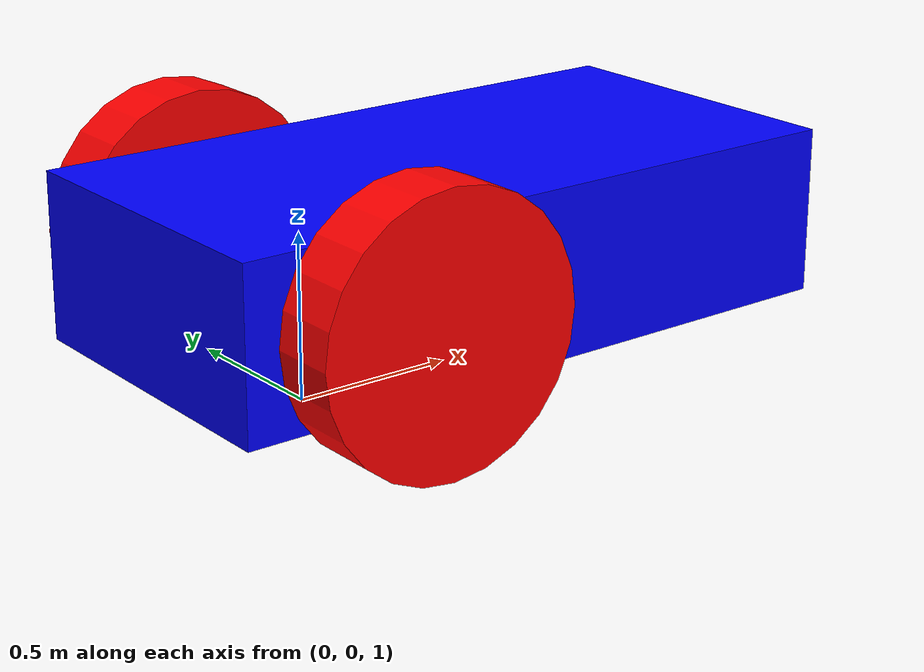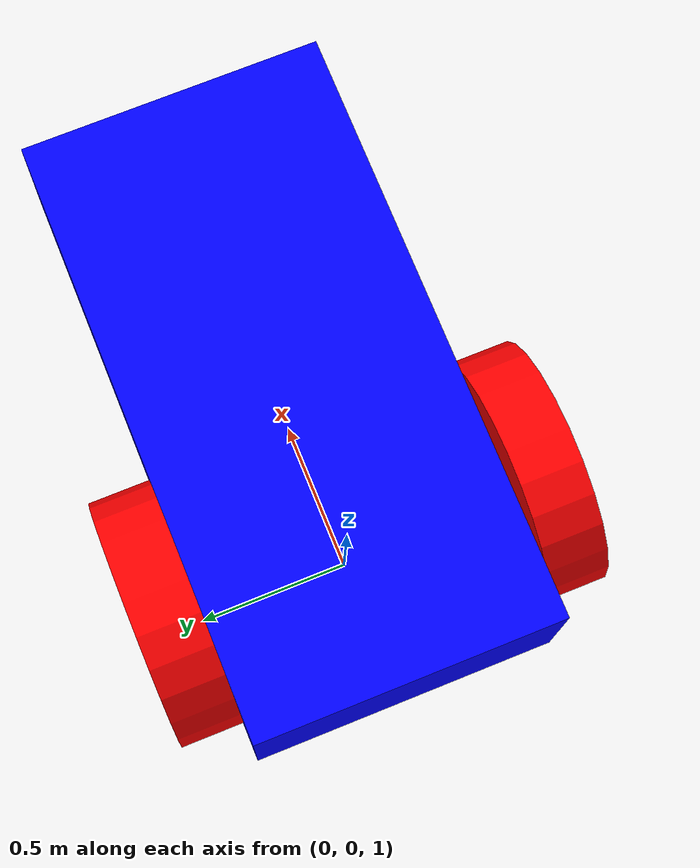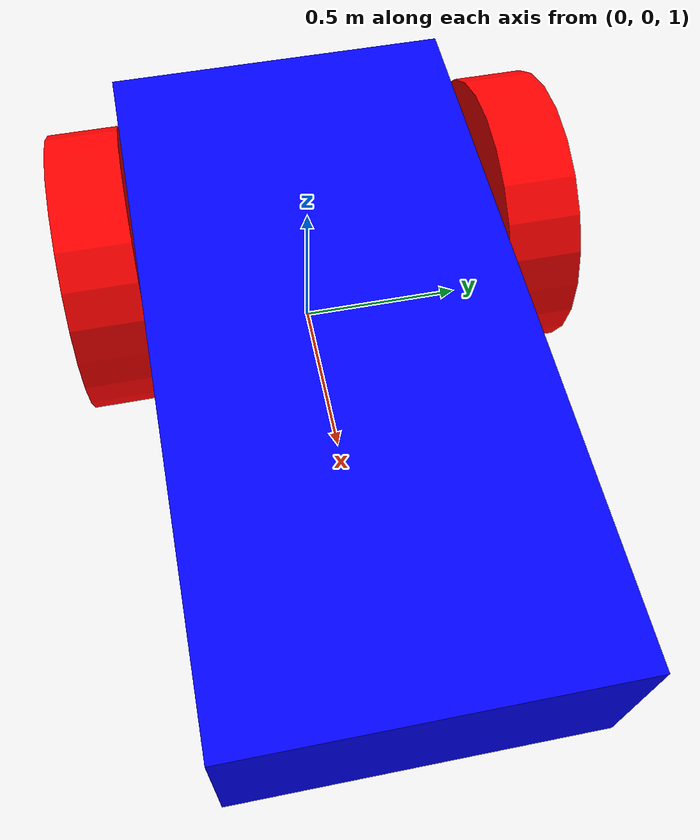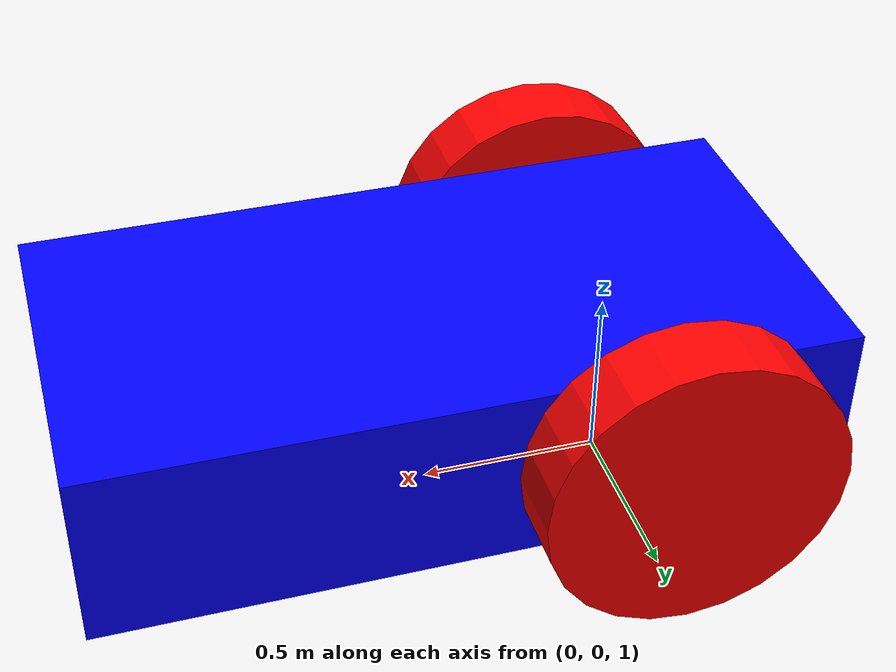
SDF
<?xml version="1.0" ?>
<sdf version="1.8">
    <world name="sensor_world">

        <model name='vehicle_blue' canonical_link='chassis'>
            <pose relative_to='world'>0 0 1 0 0 0</pose>   <!--the pose is relative to the world by default-->

            <frame name="lidar_frame" attached_to='chassis'>
                <pose>0.8 0 0.5 0 0 0</pose>
            </frame>

            <link name='chassis'>
                <pose relative_to='__model__'>0.5 0 0.4 0 0 0</pose>
                <inertial> <!--inertial properties of the link mass, inertia matix-->
                    <mass>1.14395</mass>
                    <inertia>
                        <ixx>0.126164</ixx>
                        <ixy>0</ixy>
                        <ixz>0</ixz>
                        <iyy>0.416519</iyy>
                        <iyz>0</iyz>
                        <izz>0.481014</izz>
                    </inertia>
                </inertial>
                <visual name='visual'>
                    <geometry>
                        <box>
                            <size>2.0 1.0 0.5</size> <!--question: this size is in meter-->
                        </box>
                    </geometry>
                    <!--let's add color to our link-->
                    <material>
                        <ambient>0.0 0.0 1.0 1</ambient>
                        <diffuse>0.0 0.0 1.0 1</diffuse>
                        <specular>0.0 0.0 1.0 1</specular>
                    </material>
                </visual>
                <collision name='collision'> <!--todo: describe why we need the collision-->
                    <geometry>
                        <box>
                            <size>2.0 1.0 0.5</size>
                        </box>
                    </geometry>
                </collision>
                <sensor name="imu_sensor" type="imu">
                    <always_on>1</always_on>
                    <update_rate>1</update_rate>
                    <visualize>true</visualize>
                    <topic>imu</topic>
                </sensor>
                <sensor name='gpu_lidar' type='gpu_lidar'>"
                    <pose relative_to='lidar_frame'>0 0 0 0 0 0</pose>
                    <topic>lidar</topic>
                    <update_rate>10</update_rate>
                    <ray>
                        <scan>
                            <horizontal>
                            <samples>640</samples>
                            <resolution>1</resolution>
                            <min_angle>-1.396263</min_angle>
                            <max_angle>1.396263</max_angle>
                            </horizontal>
                            <vertical>
                            <samples>1</samples>
                            <resolution>0.01</resolution>
                            <min_angle>0</min_angle>
                            <max_angle>0</max_angle>
                            </vertical>
                        </scan>
                    <range>
                        <min>0.08</min>
                        <max>10.0</max>
                        <resolution>0.01</resolution>
                    </range>
                    </ray>
                    <always_on>1</always_on>
                    <visualize>true</visualize>
                </sensor>
            </link>

            <!--let's build the left wheel-->
            <link name='left_wheel'>
                <pose relative_to="chassis">-0.5 0.6 0 -1.5707 0 0</pose> <!--angles are in radian-->
                <inertial>
                    <mass>2</mass>
                    <inertia>
                        <ixx>0.145833</ixx>
                        <ixy>0</ixy>
                        <ixz>0</ixz>
                        <iyy>0.145833</iyy>
                        <iyz>0</iyz>
                        <izz>0.125</izz>
                    </inertia>
                </inertial>
                <visual name='visual'>
                    <geometry>
                        <cylinder>
                            <radius>0.4</radius>
                            <length>0.2</length>
                        </cylinder>
                    </geometry>
                    <material>
                        <ambient>1.0 0.0 0.0 1</ambient>
                        <diffuse>1.0 0.0 0.0 1</diffuse>
                        <specular>1.0 0.0 0.0 1</specular>
                    </material>
                </visual>
                <collision name='collision'>
                    <geometry>
                        <cylinder>
                            <radius>0.4</radius>
                            <length>0.2</length>
                        </cylinder>
                    </geometry>
                </collision>
            </link>

            <!--copy and paste for right wheel but change position-->
            <link name='right_wheel'>
                <pose relative_to="chassis">-0.5 -0.6 0 -1.5707 0 0</pose> <!--angles are in radian-->
                <inertial>
                    <mass>1</mass>
                    <inertia>
                        <ixx>0.145833</ixx>
                        <ixy>0</ixy>
                        <ixz>0</ixz>
                        <iyy>0.145833</iyy>
                        <iyz>0</iyz>
                        <izz>0.125</izz>
                    </inertia>
                </inertial>
                <visual name='visual'>
                    <geometry>
                        <cylinder>
                            <radius>0.4</radius>
                            <length>0.2</length>
                        </cylinder>
                    </geometry>
                    <material>
                        <ambient>1.0 0.0 0.0 1</ambient>
                        <diffuse>1.0 0.0 0.0 1</diffuse>
                        <specular>1.0 0.0 0.0 1</specular>
                    </material>
                </visual>
                <collision name='collision'>
                    <geometry>
                        <cylinder>
                            <radius>0.4</radius>
                            <length>0.2</length>
                        </cylinder>
                    </geometry>
                </collision>
            </link>

            <frame name="caster_frame" attached_to='chassis'>
                <pose>0.8 0 -0.2 0 0 0</pose>
            </frame>

            <!--caster wheel-->
            <link name='caster'>
                <pose relative_to='caster_frame'/>
                <inertial>
                    <mass>1</mass>
                    <inertia>
                        <ixx>0.1</ixx>
                        <ixy>0</ixy>
                        <ixz>0</ixz>
                        <iyy>0.1</iyy>
                        <iyz>0</iyz>
                        <izz>0.1</izz>
                    </inertia>
                </inertial>
                <visual name='visual'>
                    <geometry>
                        <sphere>
                            <radius>0.2</radius>
                        </sphere>
                    </geometry>
                    <material>
                        <ambient>0.0 1 0.0 1</ambient>
                        <diffuse>0.0 1 0.0 1</diffuse>
                        <specular>0.0 1 0.0 1</specular>
                    </material>
                </visual>
                <collision name='collision'>
                    <geometry>
                        <sphere>
                            <radius>0.2</radius>
                        </sphere>
                    </geometry>
                </collision>
            </link>

            <!--connecting these links together using joints-->
            <joint name='left_wheel_joint' type='revolute'> <!--continous joint is not supported yet-->
                <pose relative_to='left_wheel'/>
                <parent>chassis</parent>
                <child>left_wheel</child>
                <axis>
                    <xyz expressed_in='__model__'>0 1 0</xyz> <!--can be descired to any frame or even arbitrary frames-->
                    <limit>
                        <lower>-1.79769e+308</lower>    <!--negative infinity-->
                        <upper>1.79769e+308</upper>     <!--positive infinity-->
                    </limit>
                </axis>
            </joint>

            <joint name='right_wheel_joint' type='revolute'>
                <pose relative_to='right_wheel'/>
                <parent>chassis</parent>
                <child>right_wheel</child>
                <axis>
                    <xyz expressed_in='__model__'>0 1 0</xyz>
                    <limit>
                        <lower>-1.79769e+308</lower>    <!--negative infinity-->
                        <upper>1.79769e+308</upper>     <!--positive infinity-->
                    </limit>
                </axis>
            </joint>

            <!--different type of joints ball joint--> <!--defult value is the child-->
            <joint name='caster_wheel' type='ball'>
                <parent>chassis</parent>
                <child>caster</child>
            </joint>

            <!--diff drive plugin-->
            <plugin
                filename="gz-sim-diff-drive-system"
                name="gz::sim::systems::DiffDrive">
                <left_joint>left_wheel_joint</left_joint>
                <right_joint>right_wheel_joint</right_joint>
                <wheel_separation>1.2</wheel_separation>
                <wheel_radius>0.4</wheel_radius>
                <odom_publish_frequency>1</odom_publish_frequency>
                <topic>cmd_vel</topic>
            </plugin>
        </model>
    </world>
</sdf>
